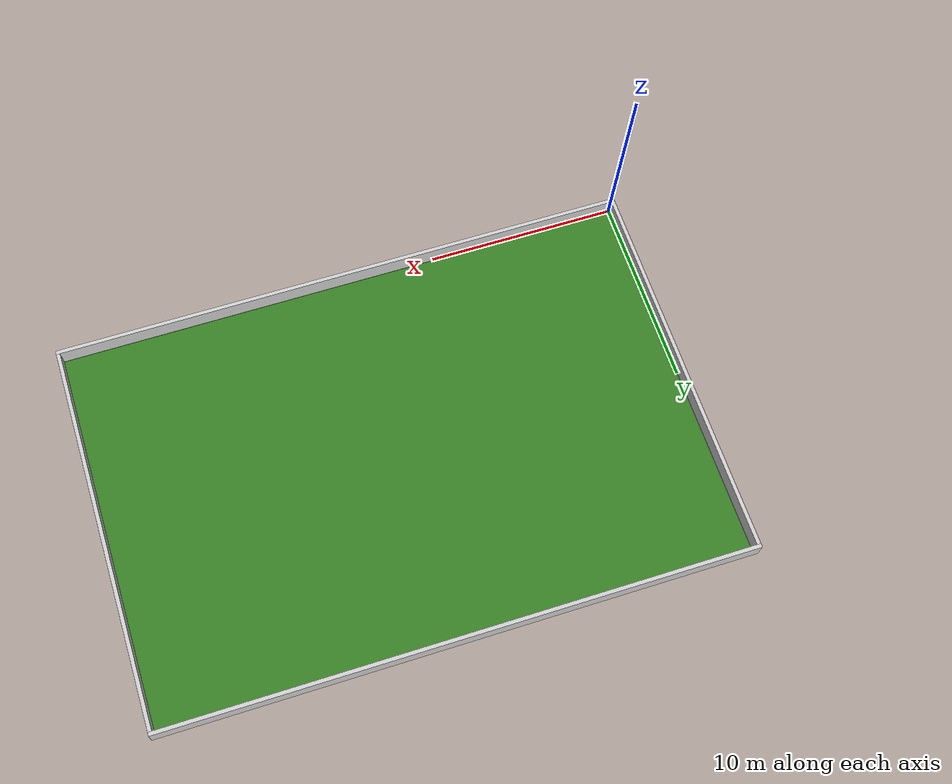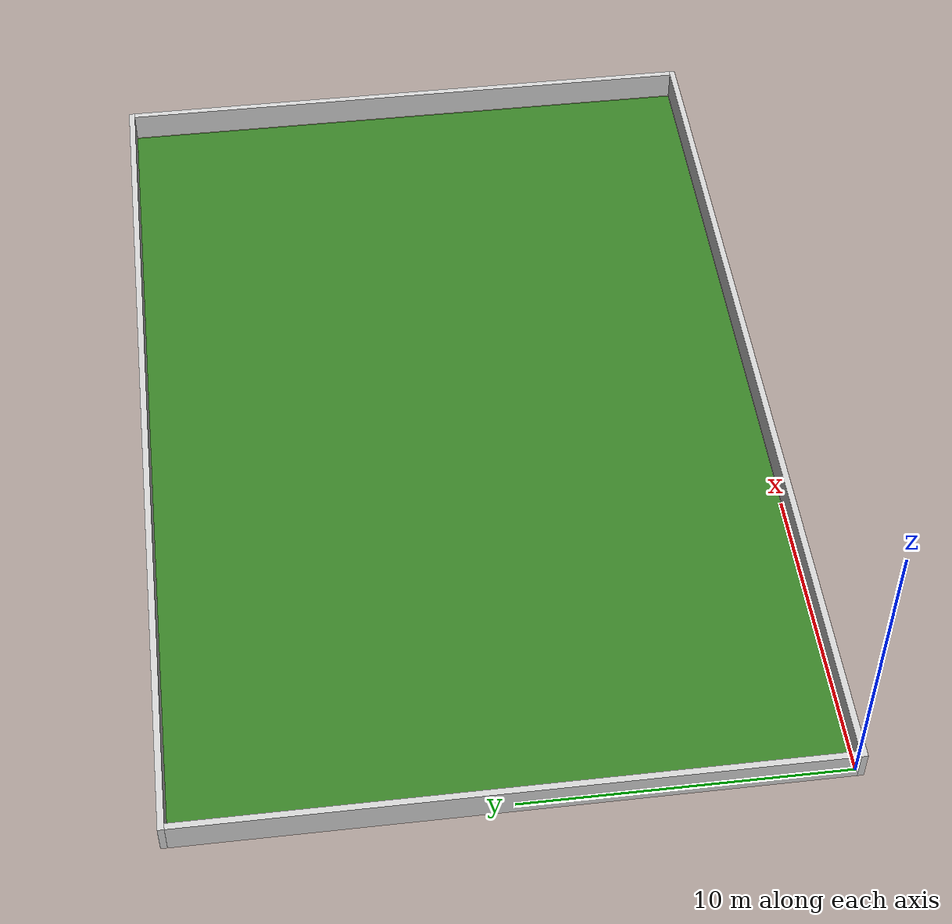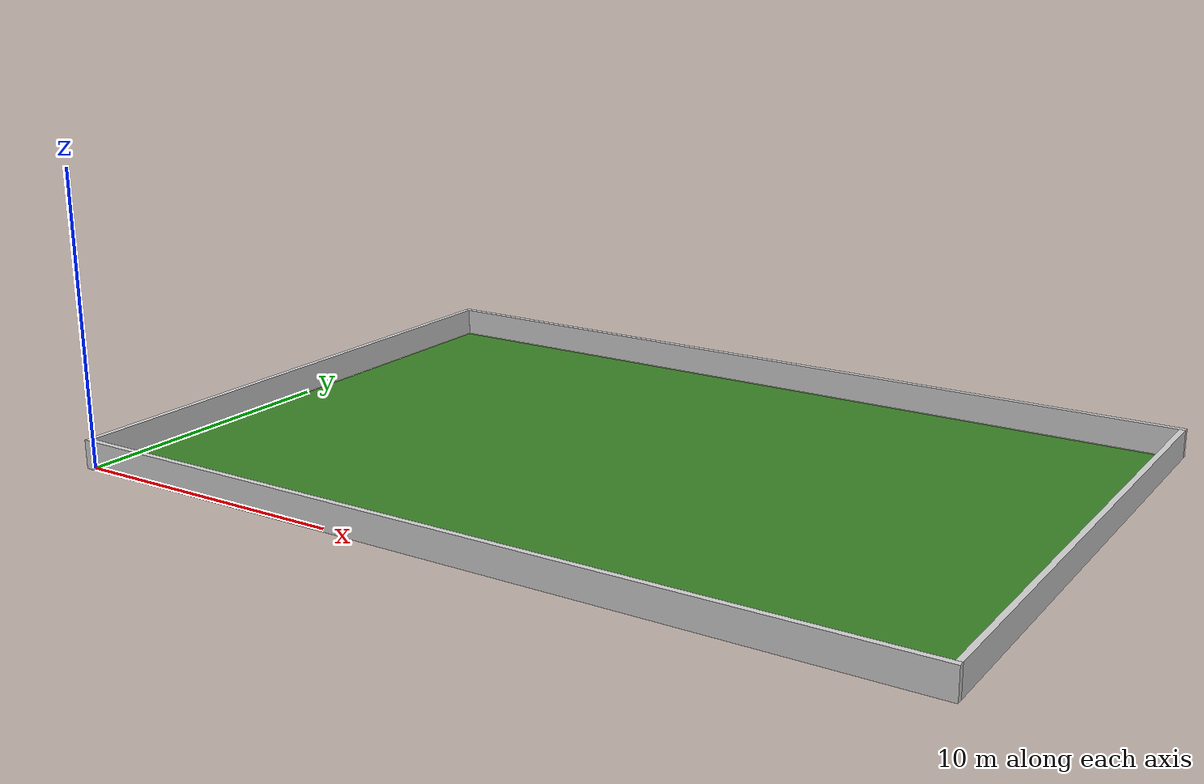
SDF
<?xml version="1.0" ?>
<sdf version="1.7">
  <!--
    Matches diff_tracked_planning/config/rectangle_field.yaml:
      origin: (0, 0)
      size:   30 m x 20 m

    The inner faces of the four walls are exactly on the field boundary.
  -->
  <world name="rectangle_field">
    <gravity>0 0 -9.8</gravity>

    <include>
      <uri>model://sun</uri>
    </include>
    <include>
      <uri>model://ground_plane</uri>
    </include>

    <physics name="default_physics" type="ode">
      <max_step_size>0.001</max_step_size>
      <real_time_factor>1.0</real_time_factor>
      <real_time_update_rate>1000</real_time_update_rate>
    </physics>

    <!-- Green visual surface for x = 0..30 and y = 0..20. -->
    <model name="field_surface">
      <static>true</static>
      <pose>15 10 0.002 0 0 0</pose>
      <link name="surface">
        <visual name="visual">
          <geometry>
            <plane>
              <normal>0 0 1</normal>
              <size>30 20</size>
            </plane>
          </geometry>
          <material>
            <ambient>0.18 0.42 0.12 1</ambient>
            <diffuse>0.22 0.50 0.15 1</diffuse>
          </material>
        </visual>
      </link>
    </model>

    <!-- The 0.20 m thick walls sit outside the configured field. -->
    <model name="field_boundary">
      <static>true</static>

      <link name="south_wall">
        <pose>15 -0.10 0.50 0 0 0</pose>
        <collision name="collision">
          <geometry><box><size>30.4 0.2 1.0</size></box></geometry>
        </collision>
        <visual name="visual">
          <geometry><box><size>30.4 0.2 1.0</size></box></geometry>
          <material>
            <ambient>0.72 0.72 0.72 1</ambient>
            <diffuse>0.82 0.82 0.82 1</diffuse>
          </material>
        </visual>
      </link>

      <link name="north_wall">
        <pose>15 20.10 0.50 0 0 0</pose>
        <collision name="collision">
          <geometry><box><size>30.4 0.2 1.0</size></box></geometry>
        </collision>
        <visual name="visual">
          <geometry><box><size>30.4 0.2 1.0</size></box></geometry>
          <material>
            <ambient>0.72 0.72 0.72 1</ambient>
            <diffuse>0.82 0.82 0.82 1</diffuse>
          </material>
        </visual>
      </link>

      <link name="west_wall">
        <pose>-0.10 10 0.50 0 0 0</pose>
        <collision name="collision">
          <geometry><box><size>0.2 20.0 1.0</size></box></geometry>
        </collision>
        <visual name="visual">
          <geometry><box><size>0.2 20.0 1.0</size></box></geometry>
          <material>
            <ambient>0.72 0.72 0.72 1</ambient>
            <diffuse>0.82 0.82 0.82 1</diffuse>
          </material>
        </visual>
      </link>

      <link name="east_wall">
        <pose>30.10 10 0.50 0 0 0</pose>
        <collision name="collision">
          <geometry><box><size>0.2 20.0 1.0</size></box></geometry>
        </collision>
        <visual name="visual">
          <geometry><box><size>0.2 20.0 1.0</size></box></geometry>
          <material>
            <ambient>0.72 0.72 0.72 1</ambient>
            <diffuse>0.82 0.82 0.82 1</diffuse>
          </material>
        </visual>
      </link>
    </model>

    <gui fullscreen="0">
      <camera name="field_camera">
        <pose>15 -18 28 0 0.65 1.57</pose>
        <view_controller>orbit</view_controller>
      </camera>
    </gui>
  </world>
</sdf>
